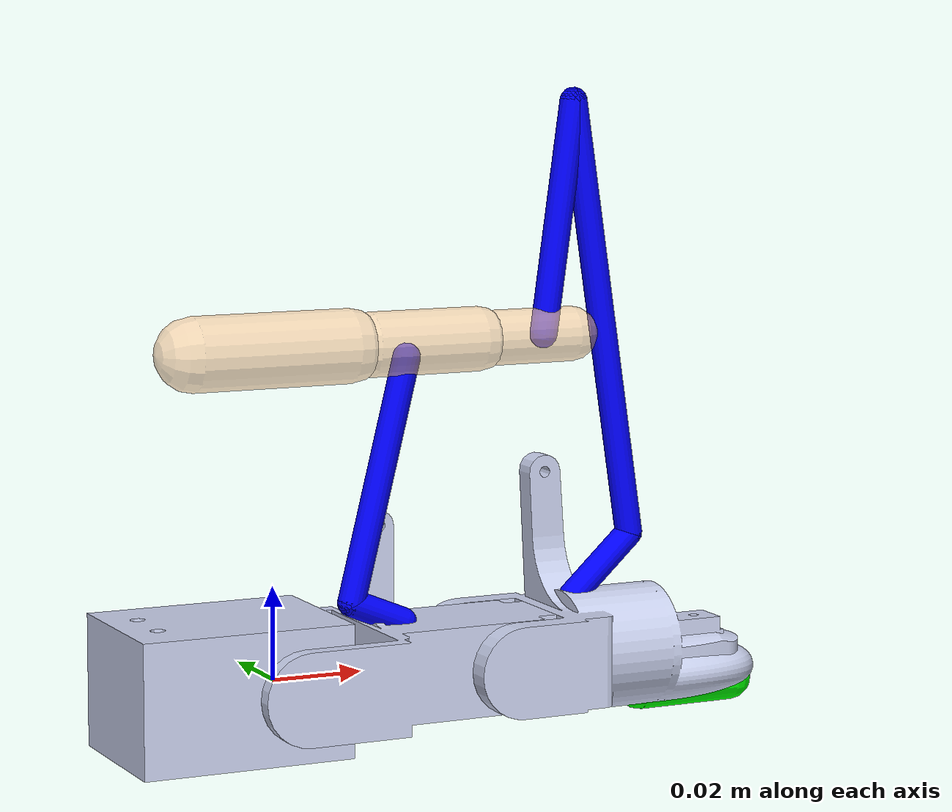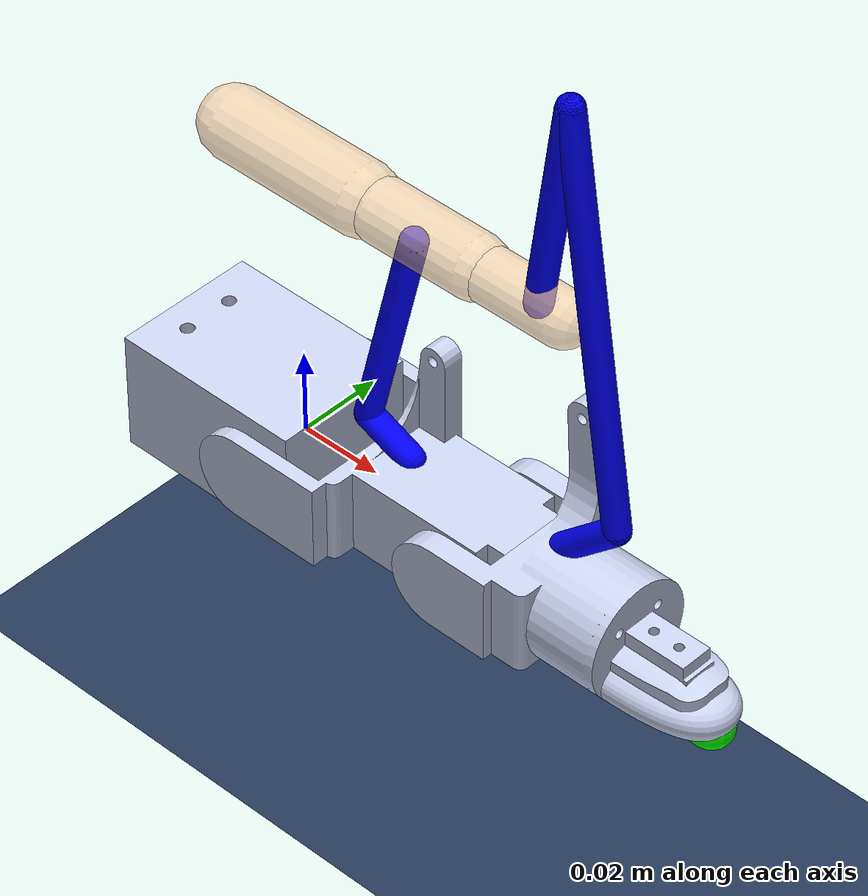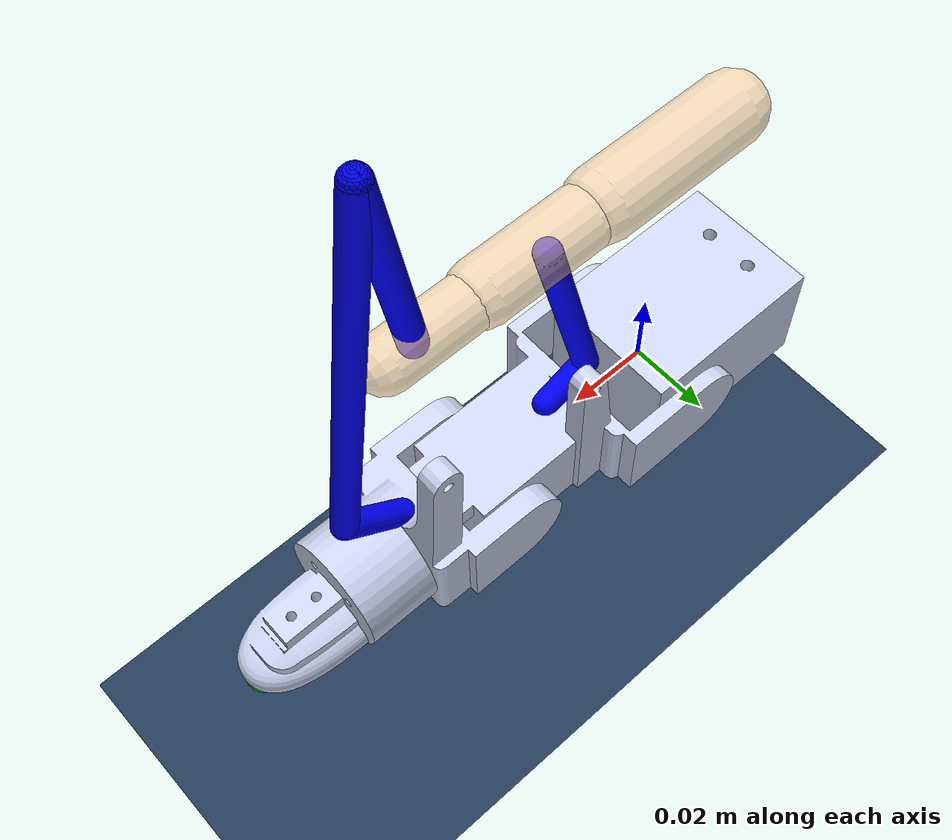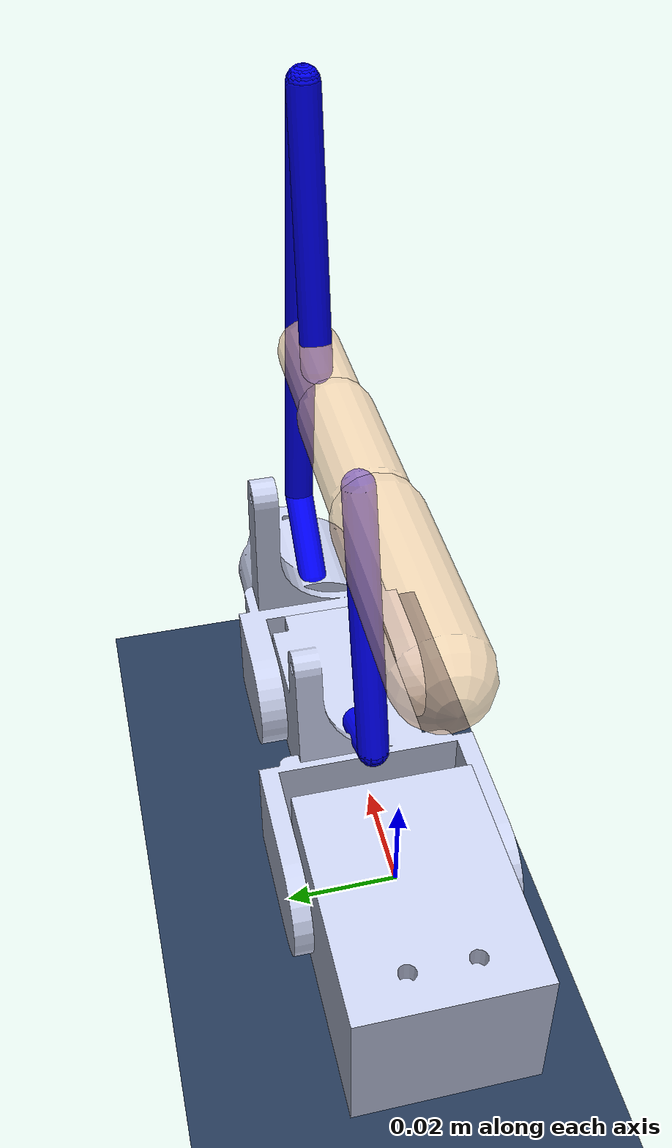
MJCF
<mujoco model="index_finger">
  <compiler angle="degree"/>
  <option timestep="0.001" gravity="0 0 0"/>
  <default>
    <default class="/">
      <joint type="hinge" damping="0.050000000000000003"/>
      <geom type="mesh" condim="3" material="finger_grey" friction="2 0.002 0.0001" solref="0.0050000000000000001 1" solimp="0.90000000000000002 0.94999999999999996 0.002" margin="0.001" gap="0"/>
    </default>
  </default>
  <asset>
    <mesh name="base_link_mesh" class="/" file="base_link-4e8fe9c740a6efdc8830f001839e381d2b2bb55e.STL"/>
    <mesh name="proximal_link_mesh" class="/" file="proximal_link-9dbbc95285b1363426dfabfb3290e004782f4ee2.STL"/>
    <mesh name="distal_link_mesh" class="/" file="distal_link-d223021ed1ed8eea1aa53b7e42a553def7ab2d20.STL"/>
    <material name="finger_grey" class="/" rgba="0.79000000000000004 0.81999999999999995 0.93000000000000005 1"/>
    <texture name="floor_tex" type="2d" builtin="checker" rgb1="0.12 0.19 0.29999999999999999" rgb2="0.16 0.25 0.38" mark="cross" markrgb="0.90000000000000002 0.90000000000000002 0.90000000000000002" width="512" height="512"/>
    <material name="floor_mat" class="/" texture="floor_tex" texrepeat="20 20" texuniform="true" specular="0.29999999999999999" shininess="40" reflectance="0.050000000000000003"/>
  </asset>
  <worldbody>
    <body name="base_link" pos="0 0 0" euler="-90 0 0">
      <inertial pos="-0.012423999999999999 -3.3887999999999998e-05 -1.0216e-18" mass="0.043213000000000001" diaginertia="7.1933999999999996e-06 1.1994000000000001e-05 1.0845e-05"/>
      <geom name="//unnamed_geom_0" class="/" mesh="base_link_mesh"/>
      <body name="proximal_link">
        <joint name="proximal_joint" class="/" pos="0 0 0" axis="0 0 1" range="-10 90"/>
        <inertial pos="0.030013999999999999 -0.00080829999999999997 0.00066078000000000003" mass="0.024622999999999999" diaginertia="3.8828999999999997e-06 5.6489999999999996e-06 4.0092999999999999e-06"/>
        <geom name="//unnamed_geom_1" class="/" mesh="proximal_link_mesh"/>
        <body name="proxi_exo1" pos="0.029999999999999999 -0.01 0" euler="90 0 0">
          <geom name="//unnamed_geom_2" class="/" type="capsule" size="0.0030000000000000001" rgba="0 0 1 1" fromto="0 0 0 -0.012 0 0.0050000000000000001"/>
          <body name="proxi_exo2" pos="-0.012 0 0.0050000000000000001">
            <joint name="hinge2.1" class="/" type="hinge" pos="0 0 0" axis="0 1 0" range="-20 90"/>
            <geom name="//unnamed_geom_3" class="/" type="capsule" size="0.0030000000000000001" rgba="0 0 1 1" fromto="0 0 0 0.012999999999999999 0 0.051999999999999998"/>
          </body>
        </body>
        <body name="distal_link" pos="0.048829999999999998 0 0">
          <joint name="distal_joint" class="/" pos="0 0 0" axis="0 0 1" range="-10 90"/>
          <inertial pos="0.025975999999999999 -0.00040286 0.00046448000000000003" mass="0.030476" diaginertia="4.1504000000000001e-06 4.0524999999999997e-06 3.5200000000000002e-06"/>
          <geom name="//unnamed_geom_4" class="/" mesh="distal_link_mesh"/>
          <body name="distal_R_dummy" pos="0.02 -0.01 0" euler="-90 -180 180">
            <site name="distal_R_site" class="/" size="0.001" pos="0 0 0"/>
            <geom name="//unnamed_geom_5" class="/" type="sphere" size="0.001" pos="0 0 0"/>
          </body>
          <body name="distal_exo1" pos="0.021999999999999999 -0.012 0" euler="90 0 0">
            <geom name="//unnamed_geom_6" class="/" type="capsule" size="0.0030000000000000001" rgba="0 0 1 1" fromto="0 0 0 0.014 0 0.012999999999999999"/>
            <body name="distal_exo2" pos="0.014 0 0.012999999999999999">
              <joint name="hinge1.1" class="/" type="hinge" pos="0 0 0" axis="0 1 0" range="0 360"/>
              <geom name="//unnamed_geom_7" class="/" type="capsule" size="0.0030000000000000001" rgba="0 0 1 1" fromto="0 0 0 -0.014293999999999999 0 0.095175999999999997"/>
              <body name="distal_exo3" pos="-0.014293999999999999 0 0.095175999999999997">
                <joint name="hinge1.2" class="/" type="hinge" pos="0 0 0" axis="0 1 0" range="0 360"/>
                <geom name="//unnamed_geom_8" class="/" type="capsule" size="0.0030000000000000001" rgba="0 0 1 1" fromto="0 0 0 -0.0070000000000000001 0 -0.050000000000000003"/>
                <body name="dist_H_dummy" pos="-0.0070000000000000001 0 -0.050000000000000003">
                  <site name="distal_H_site" class="/" size="0.001" pos="0 0 0"/>
                  <geom name="//unnamed_geom_9" class="/" type="sphere" size="0.001" pos="0 0 0"/>
                </body>
              </body>
            </body>
          </body>
          <body name="fingertip" pos="0.048829999999999998 0.01 0">
            <site name="fingertip" class="/" type="capsule" rgba="0 1 0 1" size="0.0050000000000000001" fromto="-0.01 0 0 0.012999999999999999 0 0" pos="0 0 0"/>
            <geom name="tip_sphere" class="/" type="capsule" condim="3" size="0.0050000000000000001" rgba="0 1 0 1" friction="2 0.002 0.0001" fromto="-0.01 0 0 0.012999999999999999 0 0" pos="0 0 0"/>
          </body>
        </body>
      </body>
    </body>
    <body name="shell_prox" mocap="true" pos="0 0 0.070000000000000007">
      <inertial pos="0 0 0" mass="0.0071599999999999997" diaginertia="2.29e-07 8.4499999999999996e-07 8.4499999999999996e-07"/>
      <geom name="//unnamed_geom_11" class="/" type="capsule" contype="0" conaffinity="0" size="0.0080000000000000002" rgba="1 0.80000000000000004 0.59999999999999998 0.59999999999999998" fromto="-0.017500000000000002 0 0 0.017500000000000002 0 0"/>
    </body>
    <body name="shell_mid" mocap="true" pos="0.035000000000000003 0 0.070000000000000007">
      <inertial pos="0 0 0" mass="0.0037599999999999999" diaginertia="9.2000000000000003e-08 2.4200000000000002e-07 2.4200000000000002e-07"/>
      <geom name="//unnamed_geom_12" class="/" type="capsule" contype="0" conaffinity="0" size="0.0070000000000000001" rgba="1 0.80000000000000004 0.59999999999999998 0.59999999999999998" fromto="-0.012500000000000001 0 0 0.012500000000000001 0 0"/>
    </body>
    <body name="shell_dist" mocap="true" pos="0.059999999999999998 0 0.070000000000000007">
      <inertial pos="0 0 0" mass="0.0021700000000000001" diaginertia="3.9099999999999999e-08 9.1899999999999996e-08 9.1899999999999996e-08"/>
      <geom name="//unnamed_geom_13" class="/" type="capsule" contype="0" conaffinity="0" size="0.0060000000000000001" rgba="1 0.80000000000000004 0.59999999999999998 0.59999999999999998" fromto="-0.01 0 0 0.01 0 0"/>
    </body>
    <body name="ground" pos="0 0 -0.059999999999999998">
      <geom name="ground" class="/" type="plane" size="10 10 0.10000000000000001" material="floor_mat" pos="0 0 0"/>
    </body>
    <light name="key" class="/" directional="true" pos="0 0 3" dir="0 0 -1" diffuse="0.69999999999999996 0.69999999999999996 0.69999999999999996" specular="0.29999999999999999 0.29999999999999999 0.29999999999999999"/>
    <light name="fill" class="/" directional="true" pos="3 3 2" dir="-1 -1 -0.5" diffuse="0.29999999999999999 0.29999999999999999 0.29999999999999999" specular="0.10000000000000001 0.10000000000000001 0.10000000000000001"/>
  </worldbody>
  <contact>
    <exclude name="//unnamed_contact_0" body1="base_link" body2="proximal_link"/>
    <exclude name="//unnamed_contact_1" body1="proximal_link" body2="distal_link"/>
  </contact>
  <equality>
    <weld name="w1" class="/" solref="0.002 2" solimp="0.90000000000000002 0.94999999999999996 0.002" body1="distal_exo3" body2="shell_dist"/>
    <weld name="w2" class="/" solref="0.002 2" solimp="0.90000000000000002 0.94999999999999996 0.002" body1="proxi_exo2" body2="shell_mid"/>
  </equality>
  <sensor>
    <touch name="tip_force" site="fingertip"/>
    <torque name="dist_R" site="distal_R_site"/>
    <torque name="dist_H" site="distal_H_site"/>
  </sensor>
</mujoco>
